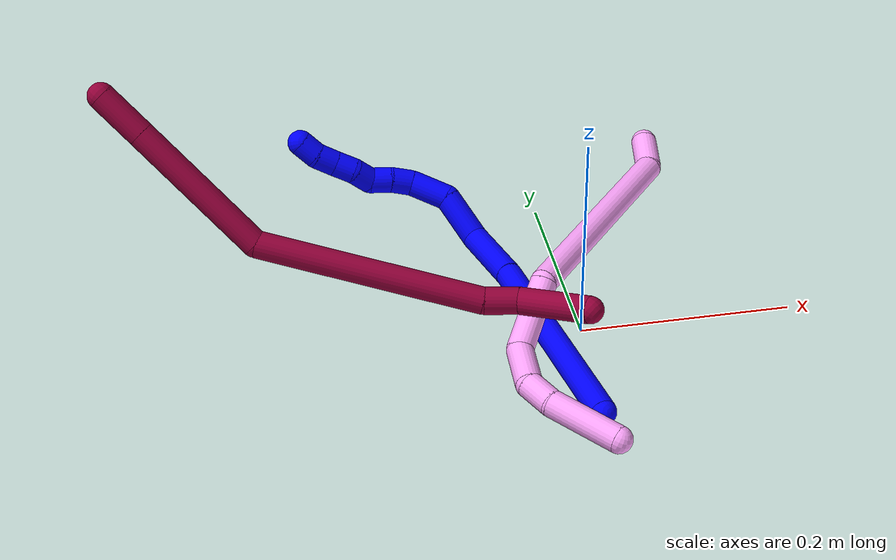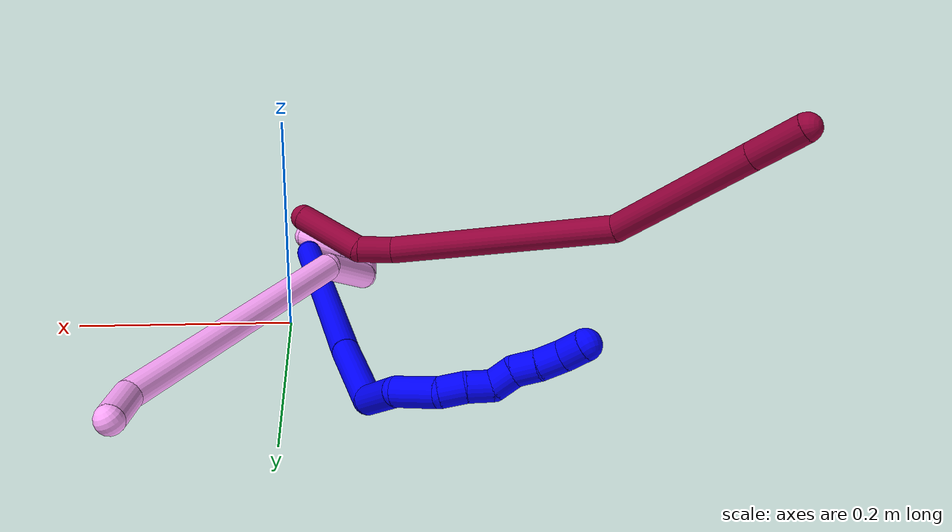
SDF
<sdf version="1.7">
 <world name="default">
  <model name="photoneo_s_sensor">
   <static>1</static>
   <pose>0 0 2 1.57079 1.57079 3.14159</pose>
   <link name="link">
    <inertial><mass>0.1</mass></inertial>
    <sensor name="sensor" type="depth">
     <update_rate>30</update_rate>
     <camera>
      <horizontal_fov>1.22</horizontal_fov>
      <image><width>1920</width><height>1200</height><format>B8G8R8</format></image>
      <clip><near>0.1</near><far>4</far></clip>
      <depth_camera><output>points</output></depth_camera>
     </camera>
     <plugin name="camera_plugin" filename="libgazebo_ros_depth_camera.so">
      <baseline>0.2</baseline>
      <alwaysOn>1</alwaysOn>
      <updateRate>0.0</updateRate>
      <cameraName>camera_ir</cameraName>
      <imageTopicName>/camera/color/image_raw</imageTopicName>
      <cameraInfoTopicName>/camera/color/camera_info</cameraInfoTopicName>
      <depthImageTopicName>/camera/depth/image_raw</depthImageTopicName>
      <depthImageCameraInfoTopicName>/camera/depth/camera_info</depthImageCameraInfoTopicName>
      <pointCloudTopicName>/camera/depth/points</pointCloudTopicName>
      <frameName>fr_optical</frameName>
      <pointCloudCutoff>0.1</pointCloudCutoff>
      <pointCloudCutoffMax>2.0</pointCloudCutoffMax>
      <distortionK1>0</distortionK1>
      <distortionK2>0</distortionK2>
      <distortionK3>0</distortionK3>
      <distortionT1>0</distortionT1>
      <distortionT2>0</distortionT2>
      <CxPrime>0</CxPrime>
      <Cx>0</Cx>
      <Cy>0</Cy>
      <focalLength>0</focalLength>
      <hackBaseline>0</hackBaseline>
     </plugin>
    </sensor>
   </link>
  </model>
  <model name="bin">
   <static>1</static>
   <link name="bottom">
    <collision name="collision-bottom">
     <pose>0 0 -0.01 0 -0 0</pose>
     <geometry><box><size>0.8 0.6 0.02</size></box></geometry>
     <surface>
      <friction><ode><mu>100</mu><mu2>100</mu2></ode></friction>
      <contact><collide_bitmask>65535</collide_bitmask></contact>
     </surface>
    </collision>
   </link>
   <link name="west_wall">
    <collision name="collision-west_wall">
     <pose>-0.41 0 0.1 0 -0 0</pose>
     <geometry><box><size>0.02 0.6 0.2</size></box></geometry>
     <surface>
      <friction><ode><mu>100</mu><mu2>100</mu2></ode></friction>
      <contact><collide_bitmask>65535</collide_bitmask></contact>
     </surface>
    </collision>
   </link>
   <link name="east_wall">
    <collision name="collision-east_wall">
     <pose>0.41 0 0.1 0 -0 0</pose>
     <geometry><box><size>0.02 0.6 0.2</size></box></geometry>
     <surface>
      <friction><ode><mu>100</mu><mu2>100</mu2></ode></friction>
      <contact><collide_bitmask>65535</collide_bitmask></contact>
     </surface>
    </collision>
   </link>
   <link name="south_wall">
    <collision name="collision-south_wall">
     <pose>0 -0.31 0.1 0 -0 0</pose>
     <geometry><box><size>0.8 0.02 0.2</size></box></geometry>
     <surface>
      <friction><ode><mu>100</mu><mu2>100</mu2></ode></friction>
      <contact><collide_bitmask>65535</collide_bitmask></contact>
     </surface>
    </collision>
   </link>
   <link name="north_wall">
    <collision name="collision-north_wall">
     <pose>0 0.31 0.1 0 -0 0</pose>
     <geometry><box><size>0.8 0.02 0.2</size></box></geometry>
     <surface>
      <friction><ode><mu>100</mu><mu2>100</mu2></ode></friction>
      <contact><collide_bitmask>65535</collide_bitmask></contact>
     </surface>
    </collision>
   </link>
  </model>
  <model name="1">
   <static>0</static>
   <link name="1">
    <collision name="collision-cylinder-e_1_1_4">
     <pose>-0.025765 0.056963 0.087995 -0.574509 -0.241015 0.071518</pose>
     <geometry><cylinder><radius>0.0125</radius><length>0.215887</length></cylinder></geometry>
     <surface>
      <friction><ode><mu>1.16</mu><mu2>1.16</mu2><slip1>0</slip1><slip2>0</slip2></ode></friction>
      <contact><ode><kp>1e+06</kp><kd>1</kd><max_vel>0</max_vel><min_depth>0.001</min_depth></ode></contact>
     </surface>
    </collision>
    <visual name="visual-cylinder-e_1_1_4">
     <pose>-0.025765 0.056963 0.087995 -0.574509 -0.241015 0.071518</pose>
     <geometry><cylinder><radius>0.0125</radius><length>0.215887</length></cylinder></geometry>
     <material><ambient>0 0 1 1</ambient></material>
    </visual>
    <collision name="collision-cylinder-e_2_4_5">
     <pose>-0.058262 0.131565 0.208418 -0.498172 -0.180398 0.046004</pose>
     <geometry><cylinder><radius>0.0125</radius><length>0.075047</length></cylinder></geometry>
     <surface>
      <friction><ode><mu>1.16</mu><mu2>1.16</mu2><slip1>0</slip1><slip2>0</slip2></ode></friction>
      <contact><ode><kp>1e+06</kp><kd>1</kd><max_vel>0</max_vel><min_depth>0.001</min_depth></ode></contact>
     </surface>
    </collision>
    <visual name="visual-cylinder-e_2_4_5">
     <pose>-0.058262 0.131565 0.208418 -0.498172 -0.180398 0.046004</pose>
     <geometry><cylinder><radius>0.0125</radius><length>0.075047</length></cylinder></geometry>
     <material><ambient>0 0 1 1</ambient></material>
    </visual>
    <collision name="collision-cylinder-e_3_5_6">
     <pose>-0.060942 0.171129 0.250162 -1.16899 0.168531 -0.111651</pose>
     <geometry><cylinder><radius>0.0125</radius><length>0.048329</length></cylinder></geometry>
     <surface>
      <friction><ode><mu>1.16</mu><mu2>1.16</mu2><slip1>0</slip1><slip2>0</slip2></ode></friction>
      <contact><ode><kp>1e+06</kp><kd>1</kd><max_vel>0</max_vel><min_depth>0.001</min_depth></ode></contact>
     </surface>
    </collision>
    <visual name="visual-cylinder-e_3_5_6">
     <pose>-0.060942 0.171129 0.250162 -1.16899 0.168531 -0.111651</pose>
     <geometry><cylinder><radius>0.0125</radius><length>0.048329</length></cylinder></geometry>
     <material><ambient>0 0 1 1</ambient></material>
    </visual>
    <collision name="collision-cylinder-e_4_6_7">
     <pose>-0.045491 0.204394 0.27017 -0.814819 0.631382 -0.280059</pose>
     <geometry><cylinder><radius>0.0125</radius><length>0.038617</length></cylinder></geometry>
     <surface>
      <friction><ode><mu>1.16</mu><mu2>1.16</mu2><slip1>0</slip1><slip2>0</slip2></ode></friction>
      <contact><ode><kp>1e+06</kp><kd>1</kd><max_vel>0</max_vel><min_depth>0.001</min_depth></ode></contact>
     </surface>
    </collision>
    <visual name="visual-cylinder-e_4_6_7">
     <pose>-0.045491 0.204394 0.27017 -0.814819 0.631382 -0.280059</pose>
     <geometry><cylinder><radius>0.0125</radius><length>0.038617</length></cylinder></geometry>
     <material><ambient>0 0 1 1</ambient></material>
    </visual>
    <collision name="collision-cylinder-e_5_7_8">
     <pose>-0.024791 0.219968 0.283955 -0.939923 1.05769 -0.577056</pose>
     <geometry><cylinder><radius>0.0125</radius><length>0.021357</length></cylinder></geometry>
     <surface>
      <friction><ode><mu>1.16</mu><mu2>1.16</mu2><slip1>0</slip1><slip2>0</slip2></ode></friction>
      <contact><ode><kp>1e+06</kp><kd>1</kd><max_vel>0</max_vel><min_depth>0.001</min_depth></ode></contact>
     </surface>
    </collision>
    <visual name="visual-cylinder-e_5_7_8">
     <pose>-0.024791 0.219968 0.283955 -0.939923 1.05769 -0.577056</pose>
     <geometry><cylinder><radius>0.0125</radius><length>0.021357</length></cylinder></geometry>
     <material><ambient>0 0 1 1</ambient></material>
    </visual>
    <collision name="collision-cylinder-e_6_8_9">
     <pose>-0.006308 0.226517 0.290979 -0.53226 1.10939 -0.334633</pose>
     <geometry><cylinder><radius>0.0125</radius><length>0.020503</length></cylinder></geometry>
     <surface>
      <friction><ode><mu>1.16</mu><mu2>1.16</mu2><slip1>0</slip1><slip2>0</slip2></ode></friction>
      <contact><ode><kp>1e+06</kp><kd>1</kd><max_vel>0</max_vel><min_depth>0.001</min_depth></ode></contact>
     </surface>
    </collision>
    <visual name="visual-cylinder-e_6_8_9">
     <pose>-0.006308 0.226517 0.290979 -0.53226 1.10939 -0.334633</pose>
     <geometry><cylinder><radius>0.0125</radius><length>0.020503</length></cylinder></geometry>
     <material><ambient>0 0 1 1</ambient></material>
    </visual>
    <collision name="collision-cylinder-e_7_9_10">
     <pose>0.010349 0.235634 0.294661 -1.60768 0.832442 -0.860067</pose>
     <geometry><cylinder><radius>0.0125</radius><length>0.020221</length></cylinder></geometry>
     <surface>
      <friction><ode><mu>1.16</mu><mu2>1.16</mu2><slip1>0</slip1><slip2>0</slip2></ode></friction>
      <contact><ode><kp>1e+06</kp><kd>1</kd><max_vel>0</max_vel><min_depth>0.001</min_depth></ode></contact>
     </surface>
    </collision>
    <visual name="visual-cylinder-e_7_9_10">
     <pose>0.010349 0.235634 0.294661 -1.60768 0.832442 -0.860067</pose>
     <geometry><cylinder><radius>0.0125</radius><length>0.020221</length></cylinder></geometry>
     <material><ambient>0 0 1 1</ambient></material>
    </visual>
    <collision name="collision-cylinder-e_8_10_11">
     <pose>0.025194 0.248355 0.297687 -1.06522 0.827784 -0.506704</pose>
     <geometry><cylinder><radius>0.0125</radius><length>0.020007</length></cylinder></geometry>
     <surface>
      <friction><ode><mu>1.16</mu><mu2>1.16</mu2><slip1>0</slip1><slip2>0</slip2></ode></friction>
      <contact><ode><kp>1e+06</kp><kd>1</kd><max_vel>0</max_vel><min_depth>0.001</min_depth></ode></contact>
     </surface>
    </collision>
    <visual name="visual-cylinder-e_8_10_11">
     <pose>0.025194 0.248355 0.297687 -1.06522 0.827784 -0.506704</pose>
     <geometry><cylinder><radius>0.0125</radius><length>0.020007</length></cylinder></geometry>
     <material><ambient>0 0 1 1</ambient></material>
    </visual>
    <collision name="collision-cylinder-e_9_11_12">
     <pose>0.040301 0.260347 0.302847 -1.27025 0.883306 -0.670591</pose>
     <geometry><cylinder><radius>0.0125</radius><length>0.020029</length></cylinder></geometry>
     <surface>
      <friction><ode><mu>1.16</mu><mu2>1.16</mu2><slip1>0</slip1><slip2>0</slip2></ode></friction>
      <contact><ode><kp>1e+06</kp><kd>1</kd><max_vel>0</max_vel><min_depth>0.001</min_depth></ode></contact>
     </surface>
    </collision>
    <visual name="visual-cylinder-e_9_11_12">
     <pose>0.040301 0.260347 0.302847 -1.27025 0.883306 -0.670591</pose>
     <geometry><cylinder><radius>0.0125</radius><length>0.020029</length></cylinder></geometry>
     <material><ambient>0 0 1 1</ambient></material>
    </visual>
    <collision name="collision-cylinder-e_10_12_2">
     <pose>0.053666 0.274464 0.306631 -1.33862 0.597466 -0.477942</pose>
     <geometry><cylinder><radius>0.0125</radius><length>0.020002</length></cylinder></geometry>
     <surface>
      <friction><ode><mu>1.16</mu><mu2>1.16</mu2><slip1>0</slip1><slip2>0</slip2></ode></friction>
      <contact><ode><kp>1e+06</kp><kd>1</kd><max_vel>0</max_vel><min_depth>0.001</min_depth></ode></contact>
     </surface>
    </collision>
    <visual name="visual-cylinder-e_10_12_2">
     <pose>0.053666 0.274464 0.306631 -1.33862 0.597466 -0.477942</pose>
     <geometry><cylinder><radius>0.0125</radius><length>0.020002</length></cylinder></geometry>
     <material><ambient>0 0 1 1</ambient></material>
    </visual>
    <collision name="collision-sphere-2">
     <pose>0.059292 0.28251 0.308533 0 -0 0</pose>
     <geometry><sphere><radius>0.0125</radius></sphere></geometry>
     <surface>
      <friction><ode><mu>1.16</mu><mu2>1.16</mu2><slip1>0</slip1><slip2>0</slip2></ode></friction>
      <contact><ode><kp>1e+06</kp><kd>1</kd><max_vel>0</max_vel><min_depth>0.001</min_depth></ode></contact>
     </surface>
    </collision>
    <visual name="visual-sphere-2">
     <pose>0.059292 0.28251 0.308533 0 -0 0</pose>
     <geometry><sphere><radius>0.0125</radius></sphere></geometry>
     <material><ambient>0 0 1 1</ambient></material>
    </visual>
    <collision name="collision-sphere-12">
     <pose>0.04804 0.266417 0.304728 0 -0 0</pose>
     <geometry><sphere><radius>0.0125</radius></sphere></geometry>
     <surface>
      <friction><ode><mu>1.16</mu><mu2>1.16</mu2><slip1>0</slip1><slip2>0</slip2></ode></friction>
      <contact><ode><kp>1e+06</kp><kd>1</kd><max_vel>0</max_vel><min_depth>0.001</min_depth></ode></contact>
     </surface>
    </collision>
    <visual name="visual-sphere-12">
     <pose>0.04804 0.266417 0.304728 0 -0 0</pose>
     <geometry><sphere><radius>0.0125</radius></sphere></geometry>
     <material><ambient>0 0 1 1</ambient></material>
    </visual>
    <collision name="collision-sphere-11">
     <pose>0.032561 0.254276 0.300965 0 -0 0</pose>
     <geometry><sphere><radius>0.0125</radius></sphere></geometry>
     <surface>
      <friction><ode><mu>1.16</mu><mu2>1.16</mu2><slip1>0</slip1><slip2>0</slip2></ode></friction>
      <contact><ode><kp>1e+06</kp><kd>1</kd><max_vel>0</max_vel><min_depth>0.001</min_depth></ode></contact>
     </surface>
    </collision>
    <visual name="visual-sphere-11">
     <pose>0.032561 0.254276 0.300965 0 -0 0</pose>
     <geometry><sphere><radius>0.0125</radius></sphere></geometry>
     <material><ambient>0 0 1 1</ambient></material>
    </visual>
    <collision name="collision-sphere-10">
     <pose>0.017827 0.242434 0.29441 0 -0 0</pose>
     <geometry><sphere><radius>0.0125</radius></sphere></geometry>
     <surface>
      <friction><ode><mu>1.16</mu><mu2>1.16</mu2><slip1>0</slip1><slip2>0</slip2></ode></friction>
      <contact><ode><kp>1e+06</kp><kd>1</kd><max_vel>0</max_vel><min_depth>0.001</min_depth></ode></contact>
     </surface>
    </collision>
    <visual name="visual-sphere-10">
     <pose>0.017827 0.242434 0.29441 0 -0 0</pose>
     <geometry><sphere><radius>0.0125</radius></sphere></geometry>
     <material><ambient>0 0 1 1</ambient></material>
    </visual>
    <collision name="collision-sphere-9">
     <pose>0.002872 0.228833 0.294912 0 -0 0</pose>
     <geometry><sphere><radius>0.0125</radius></sphere></geometry>
     <surface>
      <friction><ode><mu>1.16</mu><mu2>1.16</mu2><slip1>0</slip1><slip2>0</slip2></ode></friction>
      <contact><ode><kp>1e+06</kp><kd>1</kd><max_vel>0</max_vel><min_depth>0.001</min_depth></ode></contact>
     </surface>
    </collision>
    <visual name="visual-sphere-9">
     <pose>0.002872 0.228833 0.294912 0 -0 0</pose>
     <geometry><sphere><radius>0.0125</radius></sphere></geometry>
     <material><ambient>0 0 1 1</ambient></material>
    </visual>
    <collision name="collision-sphere-4">
     <pose>-0.05153 0.113927 0.17599 0 -0 0</pose>
     <geometry><sphere><radius>0.0125</radius></sphere></geometry>
     <surface>
      <friction><ode><mu>1.16</mu><mu2>1.16</mu2><slip1>0</slip1><slip2>0</slip2></ode></friction>
      <contact><ode><kp>1e+06</kp><kd>1</kd><max_vel>0</max_vel><min_depth>0.001</min_depth></ode></contact>
     </surface>
    </collision>
    <visual name="visual-sphere-4">
     <pose>-0.05153 0.113927 0.17599 0 -0 0</pose>
     <geometry><sphere><radius>0.0125</radius></sphere></geometry>
     <material><ambient>0 0 1 1</ambient></material>
    </visual>
    <collision name="collision-sphere-1">
     <geometry><sphere><radius>0.0125</radius></sphere></geometry>
     <surface>
      <friction><ode><mu>1.16</mu><mu2>1.16</mu2><slip1>0</slip1><slip2>0</slip2></ode></friction>
      <contact><ode><kp>1e+06</kp><kd>1</kd><max_vel>0</max_vel><min_depth>0.001</min_depth></ode></contact>
     </surface>
    </collision>
    <visual name="visual-sphere-1">
     <geometry><sphere><radius>0.0125</radius></sphere></geometry>
     <material><ambient>0 0 1 1</ambient></material>
    </visual>
    <collision name="collision-sphere-8">
     <pose>-0.015487 0.224201 0.287047 0 -0 0</pose>
     <geometry><sphere><radius>0.0125</radius></sphere></geometry>
     <surface>
      <friction><ode><mu>1.16</mu><mu2>1.16</mu2><slip1>0</slip1><slip2>0</slip2></ode></friction>
      <contact><ode><kp>1e+06</kp><kd>1</kd><max_vel>0</max_vel><min_depth>0.001</min_depth></ode></contact>
     </surface>
    </collision>
    <visual name="visual-sphere-8">
     <pose>-0.015487 0.224201 0.287047 0 -0 0</pose>
     <geometry><sphere><radius>0.0125</radius></sphere></geometry>
     <material><ambient>0 0 1 1</ambient></material>
    </visual>
    <collision name="collision-sphere-5">
     <pose>-0.064995 0.149204 0.240846 0 -0 0</pose>
     <geometry><sphere><radius>0.0125</radius></sphere></geometry>
     <surface>
      <friction><ode><mu>1.16</mu><mu2>1.16</mu2><slip1>0</slip1><slip2>0</slip2></ode></friction>
      <contact><ode><kp>1e+06</kp><kd>1</kd><max_vel>0</max_vel><min_depth>0.001</min_depth></ode></contact>
     </surface>
    </collision>
    <visual name="visual-sphere-5">
     <pose>-0.064995 0.149204 0.240846 0 -0 0</pose>
     <geometry><sphere><radius>0.0125</radius></sphere></geometry>
     <material><ambient>0 0 1 1</ambient></material>
    </visual>
    <collision name="collision-sphere-6">
     <pose>-0.056888 0.193054 0.259478 0 -0 0</pose>
     <geometry><sphere><radius>0.0125</radius></sphere></geometry>
     <surface>
      <friction><ode><mu>1.16</mu><mu2>1.16</mu2><slip1>0</slip1><slip2>0</slip2></ode></friction>
      <contact><ode><kp>1e+06</kp><kd>1</kd><max_vel>0</max_vel><min_depth>0.001</min_depth></ode></contact>
     </surface>
    </collision>
    <visual name="visual-sphere-6">
     <pose>-0.056888 0.193054 0.259478 0 -0 0</pose>
     <geometry><sphere><radius>0.0125</radius></sphere></geometry>
     <material><ambient>0 0 1 1</ambient></material>
    </visual>
    <collision name="collision-sphere-7">
     <pose>-0.034094 0.215735 0.280863 0 -0 0</pose>
     <geometry><sphere><radius>0.0125</radius></sphere></geometry>
     <surface>
      <friction><ode><mu>1.16</mu><mu2>1.16</mu2><slip1>0</slip1><slip2>0</slip2></ode></friction>
      <contact><ode><kp>1e+06</kp><kd>1</kd><max_vel>0</max_vel><min_depth>0.001</min_depth></ode></contact>
     </surface>
    </collision>
    <visual name="visual-sphere-7">
     <pose>-0.034094 0.215735 0.280863 0 -0 0</pose>
     <geometry><sphere><radius>0.0125</radius></sphere></geometry>
     <material><ambient>0 0 1 1</ambient></material>
    </visual>
    <inertial>
     <pose>-0.025403 0.13623 0.18661 0 -0 0</pose>
     <mass>0.5</mass>
     <inertia>
      <ixx>0.000938</ixx>
      <ixy>0</ixy>
      <ixz>0</ixz>
      <iyy>0.000843</iyy>
      <iyz>0</iyz>
      <izz>-0.000263</izz>
     </inertia>
    </inertial>
   </link>
   <pose>-0.012626 -0.132421 0.011499 2.10982 -0.068126 -2.71179</pose>
  </model>
  <model name="4">
   <static>0</static>
   <link name="4">
    <collision name="collision-cylinder-e_1_1_4">
     <pose>-0.006434 -0.019179 0.003758 1.3773 -0.318055 -0.262493</pose>
     <geometry><cylinder><radius>0.0125</radius><length>0.041151</length></cylinder></geometry>
     <surface>
      <friction><ode><mu>1.16</mu><mu2>1.16</mu2><slip1>0</slip1><slip2>0</slip2></ode></friction>
      <contact><ode><kp>1e+06</kp><kd>1</kd><max_vel>0</max_vel><min_depth>0.001</min_depth></ode></contact>
     </surface>
    </collision>
    <visual name="visual-cylinder-e_1_1_4">
     <pose>-0.006434 -0.019179 0.003758 1.3773 -0.318055 -0.262493</pose>
     <geometry><cylinder><radius>0.0125</radius><length>0.041151</length></cylinder></geometry>
     <material><ambient>1 0.65098 0.996078 1</ambient></material>
    </visual>
    <collision name="collision-cylinder-e_2_4_5">
     <pose>0.015176 -0.154122 0.03287 1.35519 0.232379 0.187289</pose>
     <geometry><cylinder><radius>0.0125</radius><length>0.243562</length></cylinder></geometry>
     <surface>
      <friction><ode><mu>1.16</mu><mu2>1.16</mu2><slip1>0</slip1><slip2>0</slip2></ode></friction>
      <contact><ode><kp>1e+06</kp><kd>1</kd><max_vel>0</max_vel><min_depth>0.001</min_depth></ode></contact>
     </surface>
    </collision>
    <visual name="visual-cylinder-e_2_4_5">
     <pose>0.015176 -0.154122 0.03287 1.35519 0.232379 0.187289</pose>
     <geometry><cylinder><radius>0.0125</radius><length>0.243562</length></cylinder></geometry>
     <material><ambient>1 0.65098 0.996078 1</ambient></material>
    </visual>
    <collision name="collision-cylinder-e_3_5_6">
     <pose>0.040672 -0.295935 0.081154 0.849018 -0.073331 -0.033157</pose>
     <geometry><cylinder><radius>0.0125</radius><length>0.069595</length></cylinder></geometry>
     <surface>
      <friction><ode><mu>1.16</mu><mu2>1.16</mu2><slip1>0</slip1><slip2>0</slip2></ode></friction>
      <contact><ode><kp>1e+06</kp><kd>1</kd><max_vel>0</max_vel><min_depth>0.001</min_depth></ode></contact>
     </surface>
    </collision>
    <visual name="visual-cylinder-e_3_5_6">
     <pose>0.040672 -0.295935 0.081154 0.849018 -0.073331 -0.033157</pose>
     <geometry><cylinder><radius>0.0125</radius><length>0.069595</length></cylinder></geometry>
     <material><ambient>1 0.65098 0.996078 1</ambient></material>
    </visual>
    <collision name="collision-cylinder-e_4_6_7">
     <pose>0.028936 -0.342983 0.106311 1.4651 -0.410365 -0.370118</pose>
     <geometry><cylinder><radius>0.0125</radius><length>0.046054</length></cylinder></geometry>
     <surface>
      <friction><ode><mu>1.16</mu><mu2>1.16</mu2><slip1>0</slip1><slip2>0</slip2></ode></friction>
      <contact><ode><kp>1e+06</kp><kd>1</kd><max_vel>0</max_vel><min_depth>0.001</min_depth></ode></contact>
     </surface>
    </collision>
    <visual name="visual-cylinder-e_4_6_7">
     <pose>0.028936 -0.342983 0.106311 1.4651 -0.410365 -0.370118</pose>
     <geometry><cylinder><radius>0.0125</radius><length>0.046054</length></cylinder></geometry>
     <material><ambient>1 0.65098 0.996078 1</ambient></material>
    </visual>
    <collision name="collision-cylinder-e_5_7_8">
     <pose>0.007935 -0.373064 0.10721 1.71601 -0.910202 -1.03029</pose>
     <geometry><cylinder><radius>0.0125</radius><length>0.029924</length></cylinder></geometry>
     <surface>
      <friction><ode><mu>1.16</mu><mu2>1.16</mu2><slip1>0</slip1><slip2>0</slip2></ode></friction>
      <contact><ode><kp>1e+06</kp><kd>1</kd><max_vel>0</max_vel><min_depth>0.001</min_depth></ode></contact>
     </surface>
    </collision>
    <visual name="visual-cylinder-e_5_7_8">
     <pose>0.007935 -0.373064 0.10721 1.71601 -0.910202 -1.03029</pose>
     <geometry><cylinder><radius>0.0125</radius><length>0.029924</length></cylinder></geometry>
     <material><ambient>1 0.65098 0.996078 1</ambient></material>
    </visual>
    <collision name="collision-cylinder-e_6_8_2">
     <pose>-0.035244 -0.396174 0.100008 1.96736 -1.11936 -1.51063</pose>
     <geometry><cylinder><radius>0.0125</radius><length>0.069713</length></cylinder></geometry>
     <surface>
      <friction><ode><mu>1.16</mu><mu2>1.16</mu2><slip1>0</slip1><slip2>0</slip2></ode></friction>
      <contact><ode><kp>1e+06</kp><kd>1</kd><max_vel>0</max_vel><min_depth>0.001</min_depth></ode></contact>
     </surface>
    </collision>
    <visual name="visual-cylinder-e_6_8_2">
     <pose>-0.035244 -0.396174 0.100008 1.96736 -1.11936 -1.51063</pose>
     <geometry><cylinder><radius>0.0125</radius><length>0.069713</length></cylinder></geometry>
     <material><ambient>1 0.65098 0.996078 1</ambient></material>
    </visual>
    <collision name="collision-sphere-2">
     <pose>-0.066609 -0.4102 0.094135 0 -0 0</pose>
     <geometry><sphere><radius>0.0125</radius></sphere></geometry>
     <surface>
      <friction><ode><mu>1.16</mu><mu2>1.16</mu2><slip1>0</slip1><slip2>0</slip2></ode></friction>
      <contact><ode><kp>1e+06</kp><kd>1</kd><max_vel>0</max_vel><min_depth>0.001</min_depth></ode></contact>
     </surface>
    </collision>
    <visual name="visual-sphere-2">
     <pose>-0.066609 -0.4102 0.094135 0 -0 0</pose>
     <geometry><sphere><radius>0.0125</radius></sphere></geometry>
     <material><ambient>1 0.65098 0.996078 1</ambient></material>
    </visual>
    <collision name="collision-sphere-4">
     <pose>-0.012869 -0.038358 0.007516 0 -0 0</pose>
     <geometry><sphere><radius>0.0125</radius></sphere></geometry>
     <surface>
      <friction><ode><mu>1.16</mu><mu2>1.16</mu2><slip1>0</slip1><slip2>0</slip2></ode></friction>
      <contact><ode><kp>1e+06</kp><kd>1</kd><max_vel>0</max_vel><min_depth>0.001</min_depth></ode></contact>
     </surface>
    </collision>
    <visual name="visual-sphere-4">
     <pose>-0.012869 -0.038358 0.007516 0 -0 0</pose>
     <geometry><sphere><radius>0.0125</radius></sphere></geometry>
     <material><ambient>1 0.65098 0.996078 1</ambient></material>
    </visual>
    <collision name="collision-sphere-1">
     <geometry><sphere><radius>0.0125</radius></sphere></geometry>
     <surface>
      <friction><ode><mu>1.16</mu><mu2>1.16</mu2><slip1>0</slip1><slip2>0</slip2></ode></friction>
      <contact><ode><kp>1e+06</kp><kd>1</kd><max_vel>0</max_vel><min_depth>0.001</min_depth></ode></contact>
     </surface>
    </collision>
    <visual name="visual-sphere-1">
     <geometry><sphere><radius>0.0125</radius></sphere></geometry>
     <material><ambient>1 0.65098 0.996078 1</ambient></material>
    </visual>
    <collision name="collision-sphere-8">
     <pose>-0.003879 -0.382148 0.105882 0 -0 0</pose>
     <geometry><sphere><radius>0.0125</radius></sphere></geometry>
     <surface>
      <friction><ode><mu>1.16</mu><mu2>1.16</mu2><slip1>0</slip1><slip2>0</slip2></ode></friction>
      <contact><ode><kp>1e+06</kp><kd>1</kd><max_vel>0</max_vel><min_depth>0.001</min_depth></ode></contact>
     </surface>
    </collision>
    <visual name="visual-sphere-8">
     <pose>-0.003879 -0.382148 0.105882 0 -0 0</pose>
     <geometry><sphere><radius>0.0125</radius></sphere></geometry>
     <material><ambient>1 0.65098 0.996078 1</ambient></material>
    </visual>
    <collision name="collision-sphere-5">
     <pose>0.043222 -0.269885 0.058224 0 -0 0</pose>
     <geometry><sphere><radius>0.0125</radius></sphere></geometry>
     <surface>
      <friction><ode><mu>1.16</mu><mu2>1.16</mu2><slip1>0</slip1><slip2>0</slip2></ode></friction>
      <contact><ode><kp>1e+06</kp><kd>1</kd><max_vel>0</max_vel><min_depth>0.001</min_depth></ode></contact>
     </surface>
    </collision>
    <visual name="visual-sphere-5">
     <pose>0.043222 -0.269885 0.058224 0 -0 0</pose>
     <geometry><sphere><radius>0.0125</radius></sphere></geometry>
     <material><ambient>1 0.65098 0.996078 1</ambient></material>
    </visual>
    <collision name="collision-sphere-6">
     <pose>0.038123 -0.321985 0.104084 0 -0 0</pose>
     <geometry><sphere><radius>0.0125</radius></sphere></geometry>
     <surface>
      <friction><ode><mu>1.16</mu><mu2>1.16</mu2><slip1>0</slip1><slip2>0</slip2></ode></friction>
      <contact><ode><kp>1e+06</kp><kd>1</kd><max_vel>0</max_vel><min_depth>0.001</min_depth></ode></contact>
     </surface>
    </collision>
    <visual name="visual-sphere-6">
     <pose>0.038123 -0.321985 0.104084 0 -0 0</pose>
     <geometry><sphere><radius>0.0125</radius></sphere></geometry>
     <material><ambient>1 0.65098 0.996078 1</ambient></material>
    </visual>
    <collision name="collision-sphere-7">
     <pose>0.01975 -0.36398 0.108539 0 -0 0</pose>
     <geometry><sphere><radius>0.0125</radius></sphere></geometry>
     <surface>
      <friction><ode><mu>1.16</mu><mu2>1.16</mu2><slip1>0</slip1><slip2>0</slip2></ode></friction>
      <contact><ode><kp>1e+06</kp><kd>1</kd><max_vel>0</max_vel><min_depth>0.001</min_depth></ode></contact>
     </surface>
    </collision>
    <visual name="visual-sphere-7">
     <pose>0.01975 -0.36398 0.108539 0 -0 0</pose>
     <geometry><sphere><radius>0.0125</radius></sphere></geometry>
     <material><ambient>1 0.65098 0.996078 1</ambient></material>
    </visual>
    <inertial>
     <pose>0.010751 -0.227002 0.057769 0 -0 0</pose>
     <mass>0.5</mass>
     <inertia>
      <ixx>0.001401</ixx>
      <ixy>0</ixy>
      <ixz>0</ixz>
      <iyy>0.000524</iyy>
      <iyz>0</iyz>
      <izz>0.000974</izz>
     </inertia>
    </inertial>
   </link>
   <pose>0.118996 0.232875 0.051112 -2.95415 -0.364904 2.70391</pose>
  </model>
  <model name="8">
   <static>0</static>
   <link name="8">
    <collision name="collision-cylinder-e_1_1_4">
     <pose>0.007204 0.020043 0.028374 -0.615001 0.204476 -0.06514</pose>
     <geometry><cylinder><radius>0.0125</radius><length>0.070956</length></cylinder></geometry>
     <surface>
      <friction><ode><mu>1.16</mu><mu2>1.16</mu2><slip1>0</slip1><slip2>0</slip2></ode></friction>
      <contact><ode><kp>1e+06</kp><kd>1</kd><max_vel>0</max_vel><min_depth>0.001</min_depth></ode></contact>
     </surface>
    </collision>
    <visual name="visual-cylinder-e_1_1_4">
     <pose>0.007204 0.020043 0.028374 -0.615001 0.204476 -0.06514</pose>
     <geometry><cylinder><radius>0.0125</radius><length>0.070956</length></cylinder></geometry>
     <material><ambient>0.584314 0 0.227451 1</ambient></material>
    </visual>
    <collision name="collision-cylinder-e_2_4_5">
     <pose>0.008347 0.049768 0.068428 -0.692132 -0.380046 0.138488</pose>
     <geometry><cylinder><radius>0.0125</radius><length>0.032676</length></cylinder></geometry>
     <surface>
      <friction><ode><mu>1.16</mu><mu2>1.16</mu2><slip1>0</slip1><slip2>0</slip2></ode></friction>
      <contact><ode><kp>1e+06</kp><kd>1</kd><max_vel>0</max_vel><min_depth>0.001</min_depth></ode></contact>
     </surface>
    </collision>
    <visual name="visual-cylinder-e_2_4_5">
     <pose>0.008347 0.049768 0.068428 -0.692132 -0.380046 0.138488</pose>
     <geometry><cylinder><radius>0.0125</radius><length>0.032676</length></cylinder></geometry>
     <material><ambient>0.584314 0 0.227451 1</ambient></material>
    </visual>
    <collision name="collision-cylinder-e_3_5_6">
     <pose>-0.03299 0.100777 0.169487 -0.433101 -0.343998 0.076398</pose>
     <geometry><cylinder><radius>0.0125</radius><length>0.209197</length></cylinder></geometry>
     <surface>
      <friction><ode><mu>1.16</mu><mu2>1.16</mu2><slip1>0</slip1><slip2>0</slip2></ode></friction>
      <contact><ode><kp>1e+06</kp><kd>1</kd><max_vel>0</max_vel><min_depth>0.001</min_depth></ode></contact>
     </surface>
    </collision>
    <visual name="visual-cylinder-e_3_5_6">
     <pose>-0.03299 0.100777 0.169487 -0.433101 -0.343998 0.076398</pose>
     <geometry><cylinder><radius>0.0125</radius><length>0.209197</length></cylinder></geometry>
     <material><ambient>0.584314 0 0.227451 1</ambient></material>
    </visual>
    <collision name="collision-cylinder-e_4_6_7">
     <pose>-0.0901 0.133452 0.32449 0.131092 -0.318621 -0.021092</pose>
     <geometry><cylinder><radius>0.0125</radius><length>0.1394</length></cylinder></geometry>
     <surface>
      <friction><ode><mu>1.16</mu><mu2>1.16</mu2><slip1>0</slip1><slip2>0</slip2></ode></friction>
      <contact><ode><kp>1e+06</kp><kd>1</kd><max_vel>0</max_vel><min_depth>0.001</min_depth></ode></contact>
     </surface>
    </collision>
    <visual name="visual-cylinder-e_4_6_7">
     <pose>-0.0901 0.133452 0.32449 0.131092 -0.318621 -0.021092</pose>
     <geometry><cylinder><radius>0.0125</radius><length>0.1394</length></cylinder></geometry>
     <material><ambient>0.584314 0 0.227451 1</ambient></material>
    </visual>
    <collision name="collision-cylinder-e_5_7_2">
     <pose>-0.11939 0.121908 0.412621 0.127768 -0.317455 -0.02048</pose>
     <geometry><cylinder><radius>0.0125</radius><length>0.047772</length></cylinder></geometry>
     <surface>
      <friction><ode><mu>1.16</mu><mu2>1.16</mu2><slip1>0</slip1><slip2>0</slip2></ode></friction>
      <contact><ode><kp>1e+06</kp><kd>1</kd><max_vel>0</max_vel><min_depth>0.001</min_depth></ode></contact>
     </surface>
    </collision>
    <visual name="visual-cylinder-e_5_7_2">
     <pose>-0.11939 0.121908 0.412621 0.127768 -0.317455 -0.02048</pose>
     <geometry><cylinder><radius>0.0125</radius><length>0.047772</length></cylinder></geometry>
     <material><ambient>0.584314 0 0.227451 1</ambient></material>
    </visual>
    <collision name="collision-sphere-2">
     <pose>-0.126846 0.119016 0.435129 0 -0 0</pose>
     <geometry><sphere><radius>0.0125</radius></sphere></geometry>
     <surface>
      <friction><ode><mu>1.16</mu><mu2>1.16</mu2><slip1>0</slip1><slip2>0</slip2></ode></friction>
      <contact><ode><kp>1e+06</kp><kd>1</kd><max_vel>0</max_vel><min_depth>0.001</min_depth></ode></contact>
     </surface>
    </collision>
    <visual name="visual-sphere-2">
     <pose>-0.126846 0.119016 0.435129 0 -0 0</pose>
     <geometry><sphere><radius>0.0125</radius></sphere></geometry>
     <material><ambient>0.584314 0 0.227451 1</ambient></material>
    </visual>
    <collision name="collision-sphere-7">
     <pose>-0.111934 0.124799 0.390114 0 -0 0</pose>
     <geometry><sphere><radius>0.0125</radius></sphere></geometry>
     <surface>
      <friction><ode><mu>1.16</mu><mu2>1.16</mu2><slip1>0</slip1><slip2>0</slip2></ode></friction>
      <contact><ode><kp>1e+06</kp><kd>1</kd><max_vel>0</max_vel><min_depth>0.001</min_depth></ode></contact>
     </surface>
    </collision>
    <visual name="visual-sphere-7">
     <pose>-0.111934 0.124799 0.390114 0 -0 0</pose>
     <geometry><sphere><radius>0.0125</radius></sphere></geometry>
     <material><ambient>0.584314 0 0.227451 1</ambient></material>
    </visual>
    <collision name="collision-sphere-6">
     <pose>-0.068266 0.142104 0.258866 0 -0 0</pose>
     <geometry><sphere><radius>0.0125</radius></sphere></geometry>
     <surface>
      <friction><ode><mu>1.16</mu><mu2>1.16</mu2><slip1>0</slip1><slip2>0</slip2></ode></friction>
      <contact><ode><kp>1e+06</kp><kd>1</kd><max_vel>0</max_vel><min_depth>0.001</min_depth></ode></contact>
     </surface>
    </collision>
    <visual name="visual-sphere-6">
     <pose>-0.068266 0.142104 0.258866 0 -0 0</pose>
     <geometry><sphere><radius>0.0125</radius></sphere></geometry>
     <material><ambient>0.584314 0 0.227451 1</ambient></material>
    </visual>
    <collision name="collision-sphere-5">
     <pose>0.002286 0.059451 0.080109 0 -0 0</pose>
     <geometry><sphere><radius>0.0125</radius></sphere></geometry>
     <surface>
      <friction><ode><mu>1.16</mu><mu2>1.16</mu2><slip1>0</slip1><slip2>0</slip2></ode></friction>
      <contact><ode><kp>1e+06</kp><kd>1</kd><max_vel>0</max_vel><min_depth>0.001</min_depth></ode></contact>
     </surface>
    </collision>
    <visual name="visual-sphere-5">
     <pose>0.002286 0.059451 0.080109 0 -0 0</pose>
     <geometry><sphere><radius>0.0125</radius></sphere></geometry>
     <material><ambient>0.584314 0 0.227451 1</ambient></material>
    </visual>
    <collision name="collision-sphere-1">
     <geometry><sphere><radius>0.0125</radius></sphere></geometry>
     <surface>
      <friction><ode><mu>1.16</mu><mu2>1.16</mu2><slip1>0</slip1><slip2>0</slip2></ode></friction>
      <contact><ode><kp>1e+06</kp><kd>1</kd><max_vel>0</max_vel><min_depth>0.001</min_depth></ode></contact>
     </surface>
    </collision>
    <visual name="visual-sphere-1">
     <geometry><sphere><radius>0.0125</radius></sphere></geometry>
     <material><ambient>0.584314 0 0.227451 1</ambient></material>
    </visual>
    <collision name="collision-sphere-4">
     <pose>0.014408 0.040086 0.056747 0 -0 0</pose>
     <geometry><sphere><radius>0.0125</radius></sphere></geometry>
     <surface>
      <friction><ode><mu>1.16</mu><mu2>1.16</mu2><slip1>0</slip1><slip2>0</slip2></ode></friction>
      <contact><ode><kp>1e+06</kp><kd>1</kd><max_vel>0</max_vel><min_depth>0.001</min_depth></ode></contact>
     </surface>
    </collision>
    <visual name="visual-sphere-4">
     <pose>0.014408 0.040086 0.056747 0 -0 0</pose>
     <geometry><sphere><radius>0.0125</radius></sphere></geometry>
     <material><ambient>0.584314 0 0.227451 1</ambient></material>
    </visual>
    <inertial>
     <pose>-0.048762 0.097115 0.209302 0 -0 0</pose>
     <mass>0.5</mass>
     <inertia>
      <ixx>0.001028</ixx>
      <ixy>0</ixy>
      <ixz>0</ixz>
      <iyy>0.001035</iyy>
      <iyz>0</iyz>
      <izz>6.9e-05</izz>
     </inertia>
    </inertial>
   </link>
   <pose>-0.011638 -0.072343 0.07827 -1.07574 0.528196 1.0016</pose>
  </model>
 </world>
</sdf>
